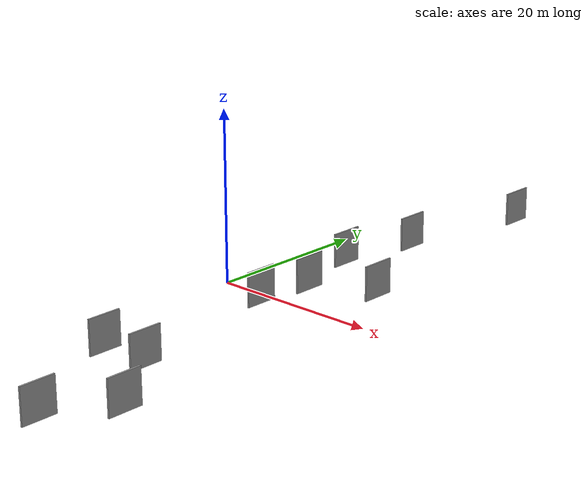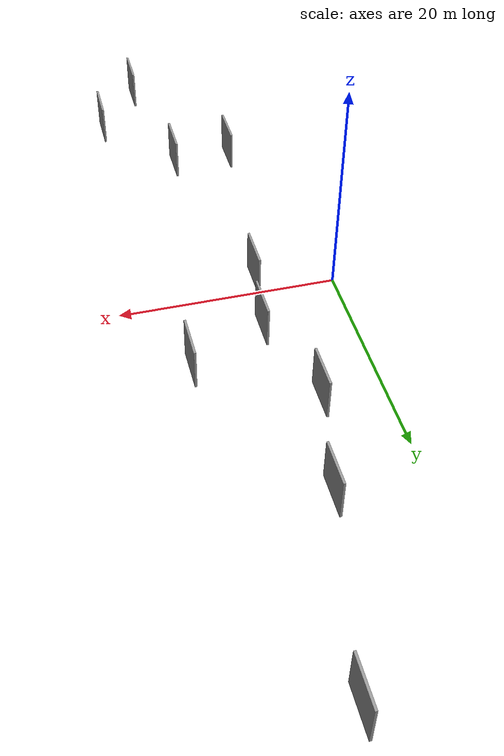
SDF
<sdf version="1.6">
 <world name="default">
  <scene>
   <sky><clouds><speed>12</speed></clouds></sky>
   <ambient>0.4 0.4 0.4 1</ambient>
   <background>0.7 0.7 0.7 1</background>
   <shadows>1</shadows>
  </scene>
  <gravity>0 0 -9.8066</gravity>
  <magnetic_field>6e-06 2.3e-05 -4.2e-05</magnetic_field>
  <physics default="0" name="default_physics" type="ode">
   <ode>
    <solver>
     <type>quick</type>
     <iters>10</iters>
     <sor>1.0</sor>
     <use_dynamic_moi_rescaling>0</use_dynamic_moi_rescaling>
    </solver>
    <constraints>
     <cfm>0</cfm>
     <erp>0.2</erp>
     <contact_max_correcting_vel>100</contact_max_correcting_vel>
     <contact_surface_layer>0.001</contact_surface_layer>
    </constraints>
   </ode>
   <max_step_size>0.004</max_step_size>
   <real_time_factor>1</real_time_factor>
   <real_time_update_rate>250</real_time_update_rate>
  </physics>
  <light name="sun" type="directional">
   <pose>0 0 10 0 0 0</pose>
   <diffuse>0.8 0.8 0.8 1</diffuse>
   <specular>0.2 0.2 0.2 1</specular>
   <attenuation>
    <range>1000</range>
    <constant>0.9</constant>
    <linear>0.01</linear>
    <quadratic>0.001</quadratic>
   </attenuation>
   <direction>-0.5 0.1 -0.9</direction>
  </light>
  <model name="grey_wall_1">
   <static>1</static>
   <pose>15.1653 8.0095 0.0 0.000000 0.000000 1.570796</pose>
   <link name="link">
    <pose>0 0 2.00 0 0 0</pose>
    <collision name="collision"><geometry><box><size>4.00 0.2 4.00</size></box></geometry></collision>
    <visual name="visual">
     <cast_shadows>0</cast_shadows>
     <geometry><box><size>4.00 0.2 4.00</size></box></geometry>
     <material>
      <script>
       <uri>model://grey_wall/materials/scripts</uri>
       <uri>model://grey_wall/materials/textures</uri>
       <name>vrc/grey_wall</name>
      </script>
     </material>
    </visual>
   </link>
  </model>
  <model name="grey_wall_2">
   <static>1</static>
   <pose>16.9954 -29.6659 0.0 0.000000 0.000000 1.570796</pose>
   <link name="link">
    <pose>0 0 2.00 0 0 0</pose>
    <collision name="collision"><geometry><box><size>4.00 0.2 4.00</size></box></geometry></collision>
    <visual name="visual">
     <cast_shadows>0</cast_shadows>
     <geometry><box><size>4.00 0.2 4.00</size></box></geometry>
     <material>
      <script>
       <uri>model://grey_wall/materials/scripts</uri>
       <uri>model://grey_wall/materials/textures</uri>
       <name>vrc/grey_wall</name>
      </script>
     </material>
    </visual>
   </link>
  </model>
  <model name="grey_wall_3">
   <static>1</static>
   <pose>7.1072 -1.8497 0.0 0.000000 0.000000 1.570796</pose>
   <link name="link">
    <pose>0 0 2.00 0 0 0</pose>
    <collision name="collision"><geometry><box><size>4.00 0.2 4.00</size></box></geometry></collision>
    <visual name="visual">
     <cast_shadows>0</cast_shadows>
     <geometry><box><size>4.00 0.2 4.00</size></box></geometry>
     <material>
      <script>
       <uri>model://grey_wall/materials/scripts</uri>
       <uri>model://grey_wall/materials/textures</uri>
       <name>vrc/grey_wall</name>
      </script>
     </material>
    </visual>
   </link>
  </model>
  <model name="grey_wall_4">
   <static>1</static>
   <pose>4.8142 -21.7501 0.0 0.000000 0.000000 1.570796</pose>
   <link name="link">
    <pose>0 0 2.00 0 0 0</pose>
    <collision name="collision"><geometry><box><size>4.00 0.2 4.00</size></box></geometry></collision>
    <visual name="visual">
     <cast_shadows>0</cast_shadows>
     <geometry><box><size>4.00 0.2 4.00</size></box></geometry>
     <material>
      <script>
       <uri>model://grey_wall/materials/scripts</uri>
       <uri>model://grey_wall/materials/textures</uri>
       <name>vrc/grey_wall</name>
      </script>
     </material>
    </visual>
   </link>
  </model>
  <model name="grey_wall_5">
   <static>1</static>
   <pose>5.5350 13.7612 0.0 0.000000 0.000000 1.570796</pose>
   <link name="link">
    <pose>0 0 2.00 0 0 0</pose>
    <collision name="collision"><geometry><box><size>4.00 0.2 4.00</size></box></geometry></collision>
    <visual name="visual">
     <cast_shadows>0</cast_shadows>
     <geometry><box><size>4.00 0.2 4.00</size></box></geometry>
     <material>
      <script>
       <uri>model://grey_wall/materials/scripts</uri>
       <uri>model://grey_wall/materials/textures</uri>
       <name>vrc/grey_wall</name>
      </script>
     </material>
    </visual>
   </link>
  </model>
  <model name="grey_wall_6">
   <static>1</static>
   <pose>7.5610 23.2470 0.0 0.000000 0.000000 1.570796</pose>
   <link name="link">
    <pose>0 0 2.00 0 0 0</pose>
    <collision name="collision"><geometry><box><size>4.00 0.2 4.00</size></box></geometry></collision>
    <visual name="visual">
     <cast_shadows>0</cast_shadows>
     <geometry><box><size>4.00 0.2 4.00</size></box></geometry>
     <material>
      <script>
       <uri>model://grey_wall/materials/scripts</uri>
       <uri>model://grey_wall/materials/textures</uri>
       <name>vrc/grey_wall</name>
      </script>
     </material>
    </visual>
   </link>
  </model>
  <model name="grey_wall_7">
   <static>1</static>
   <pose>10.6442 -21.5555 0.0 0.000000 0.000000 1.570796</pose>
   <link name="link">
    <pose>0 0 2.00 0 0 0</pose>
    <collision name="collision"><geometry><box><size>4.00 0.2 4.00</size></box></geometry></collision>
    <visual name="visual">
     <cast_shadows>0</cast_shadows>
     <geometry><box><size>4.00 0.2 4.00</size></box></geometry>
     <material>
      <script>
       <uri>model://grey_wall/materials/scripts</uri>
       <uri>model://grey_wall/materials/textures</uri>
       <name>vrc/grey_wall</name>
      </script>
     </material>
    </visual>
   </link>
  </model>
  <model name="grey_wall_8">
   <static>1</static>
   <pose>12.6147 -36.0734 0.0 0.000000 0.000000 1.570796</pose>
   <link name="link">
    <pose>0 0 2.00 0 0 0</pose>
    <collision name="collision"><geometry><box><size>4.00 0.2 4.00</size></box></geometry></collision>
    <visual name="visual">
     <cast_shadows>0</cast_shadows>
     <geometry><box><size>4.00 0.2 4.00</size></box></geometry>
     <material>
      <script>
       <uri>model://grey_wall/materials/scripts</uri>
       <uri>model://grey_wall/materials/textures</uri>
       <name>vrc/grey_wall</name>
      </script>
     </material>
    </visual>
   </link>
  </model>
  <model name="grey_wall_9">
   <static>1</static>
   <pose>11.0164 39.5010 0.0 0.000000 0.000000 1.570796</pose>
   <link name="link">
    <pose>0 0 2.00 0 0 0</pose>
    <collision name="collision"><geometry><box><size>4.00 0.2 4.00</size></box></geometry></collision>
    <visual name="visual">
     <cast_shadows>0</cast_shadows>
     <geometry><box><size>4.00 0.2 4.00</size></box></geometry>
     <material>
      <script>
       <uri>model://grey_wall/materials/scripts</uri>
       <uri>model://grey_wall/materials/textures</uri>
       <name>vrc/grey_wall</name>
      </script>
     </material>
    </visual>
   </link>
  </model>
  <model name="grey_wall_10">
   <static>1</static>
   <pose>8.0816 4.6977 0.0 0.000000 0.000000 1.570796</pose>
   <link name="link">
    <pose>0 0 2.00 0 0 0</pose>
    <collision name="collision"><geometry><box><size>4.00 0.2 4.00</size></box></geometry></collision>
    <visual name="visual">
     <cast_shadows>0</cast_shadows>
     <geometry><box><size>4.00 0.2 4.00</size></box></geometry>
     <material>
      <script>
       <uri>model://grey_wall/materials/scripts</uri>
       <uri>model://grey_wall/materials/textures</uri>
       <name>vrc/grey_wall</name>
      </script>
     </material>
    </visual>
   </link>
  </model>
 </world>
</sdf>
